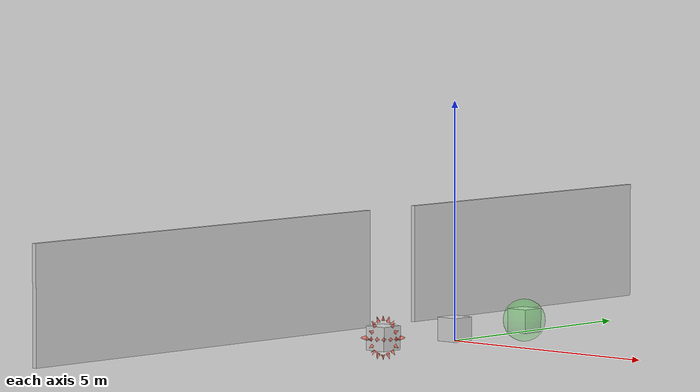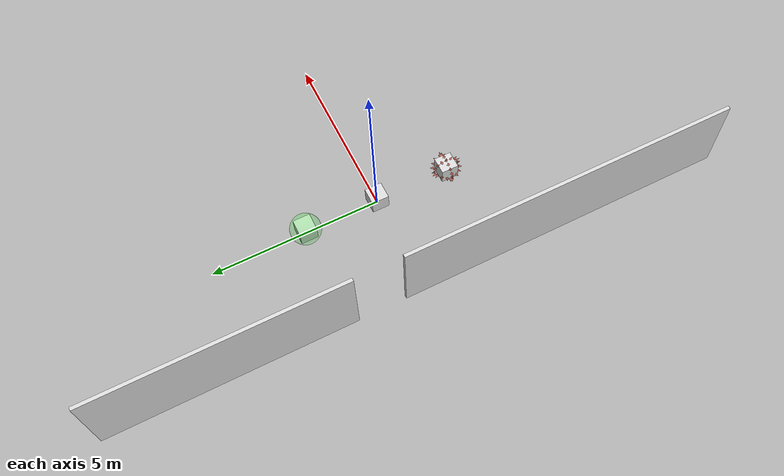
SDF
<?xml version="1.0" ?>
<sdf version="1.6">
  <model name="trap_d_2_1_m">
    <static>true</static>
    <include>
      <name>b_l</name>
      <uri>model://vis_cue_attract</uri>
      <pose>0 2.2 0.25 0 0 0</pose>
    </include>
    <include>
      <name>b_m</name>
      <uri>model://vis_cue_normal</uri>
      <pose>0 0 0.25 0 0 0</pose>
    </include>
    <include>
      <name>b_r</name>
      <uri>model://vis_cue_repel</uri>
      <pose>0 -2.2 0.25 0 0 0</pose>
    </include>

    <include>
      <name>gate_l</name>
      <uri>model://study_track_gate_l</uri>
      <pose>0 0 0 0 0 0</pose>
    </include>
  </model>
</sdf>

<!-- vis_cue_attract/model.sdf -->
<sdf version="1.6">
  <model name="vis_cue_attract">
    <static>false</static>
    <pose>0 0 0.25 0 0 0</pose>
    <link name='vis_cue_attract'>
      <inertial>
        <mass>1</mass>
        <inertia>
          <ixx>0.166667</ixx>
          <ixy>0</ixy>
          <ixz>0</ixz>
          <iyy>0.166667</iyy>
          <iyz>0</iyz>
          <izz>0.166667</izz>
        </inertia>
      </inertial>
      <collision name='collision'>
        <geometry>
          <box>
            <size>0.5 0.5 0.5</size>
          </box>
        </geometry>
        <max_contacts>10</max_contacts>
        <surface>
          <contact>
            <ode/>
          </contact>
          <bounce/>
          <friction>
            <torsional>
              <ode/>
            </torsional>
            <ode/>
          </friction>
        </surface>
      </collision>
      <visual name='box_visual'>
        <geometry>
          <box>
            <size>0.5 0.5 0.5</size>
          </box>
        </geometry>
        <material>
          <ambient>0.85 0.85 0.85 1</ambient>
          <diffuse>0.85 0.85 0.85 1</diffuse>
          <specular>0.15 0.15 0.15 1</specular>
          <emissive>0 0 0 0</emissive>
        </material>
      </visual>
      <visual name='cue_visual'>
        <geometry>
          <mesh>
            <uri>model://vis_cue_attract/meshes/sphere.stl</uri>
            <scale>0.9 0.9 0.9</scale>
          </mesh>
        </geometry>
        <material>
          <ambient>0 1 0 0.10</ambient>
          <diffuse>0 1 0 0.20</diffuse>
          <specular>0 1 0 0.20</specular>
          <emissive>0 1 0 0.1</emissive>
        </material>
      </visual>
      <self_collide>0</self_collide>
      <kinematic>0</kinematic>
    </link>
  </model>
</sdf>

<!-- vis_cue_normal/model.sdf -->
<sdf version="1.6">
  <model name="vis_cue_normal">
    <static>false</static>
    <pose>0 0 0.25 0 0 0</pose>
    <link name='vis_cue_normal'>
      <inertial>
        <mass>1</mass>
        <inertia>
          <ixx>0.166667</ixx>
          <ixy>0</ixy>
          <ixz>0</ixz>
          <iyy>0.166667</iyy>
          <iyz>0</iyz>
          <izz>0.166667</izz>
        </inertia>
      </inertial>
      <collision name='collision'>
        <geometry>
          <box>
            <size>0.5 0.5 0.5</size>
          </box>
        </geometry>
        <max_contacts>10</max_contacts>
        <surface>
          <contact>
            <ode/>
          </contact>
          <bounce/>
          <friction>
            <torsional>
              <ode/>
            </torsional>
            <ode/>
          </friction>
        </surface>
      </collision>
      <visual name='box_visual'>
        <geometry>
          <box>
            <size>0.5 0.5 0.5</size>
          </box>
        </geometry>
        <material>
          <ambient>0.85 0.85 0.85 1</ambient>
          <diffuse>0.85 0.85 0.85 1</diffuse>
          <specular>0.15 0.15 0.15 1</specular>
          <emissive>0 0 0 0</emissive>
        </material>
      </visual>
      <self_collide>0</self_collide>
      <kinematic>0</kinematic>
    </link>
  </model>
</sdf>

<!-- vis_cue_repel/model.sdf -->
<sdf version="1.6">
  <model name="vis_cue_repel">
    <static>false</static>
    <pose>0 0 0.25 0 0 0</pose>
    <link name='vis_cue_repel'>
      <inertial>
        <mass>1</mass>
        <inertia>
          <ixx>0.166667</ixx>
          <ixy>0</ixy>
          <ixz>0</ixz>
          <iyy>0.166667</iyy>
          <iyz>0</iyz>
          <izz>0.166667</izz>
        </inertia>
      </inertial>
      <collision name='collision'>
        <geometry>
          <box>
            <size>0.5 0.5 0.5</size>
          </box>
        </geometry>
        <max_contacts>10</max_contacts>
        <surface>
          <contact>
            <ode/>
          </contact>
          <bounce/>
          <friction>
            <torsional>
              <ode/>
            </torsional>
            <ode/>
          </friction>
        </surface>
      </collision>
      <visual name='box_visual'>
        <geometry>
          <box>
            <size>0.5 0.5 0.5</size>
          </box>
        </geometry>
        <material>
          <ambient>0.85 0.85 0.85 1</ambient>
          <diffuse>0.85 0.85 0.85 1</diffuse>
          <specular>0.15 0.15 0.15 1</specular>
          <emissive>0 0 0 0</emissive>
        </material>
      </visual>
      <visual name='cue_visual_1'>
        <pose>0 0 0 1.5708 0 1.5708</pose>
        <geometry>
          <mesh>
            <uri>model://vis_cue_repel/meshes/repelling_cue.stl</uri>
            <scale>0.36 0.36 0.36</scale>
          </mesh>
        </geometry>
        <material>
          <ambient>1 0.3 0.2 0.6</ambient>
          <diffuse>1 0.3 0.2 0.6</diffuse>
          <specular>1 0.3 0.2 0.7</specular>
          <emissive>0.5 0 0 0.1</emissive>
        </material>
      </visual>
      <visual name='cue_visual_2'>
        <pose>0 0 0 1.5708 0 0</pose>
        <geometry>
          <mesh>
            <uri>model://vis_cue_repel/meshes/repelling_cue.stl</uri>
            <scale>0.36 0.36 0.36</scale>
          </mesh>
        </geometry>
        <material>
          <ambient>1 0.3 0.2 0.6</ambient>
          <diffuse>1 0.3 0.2 0.6</diffuse>
          <specular>1 0.3 0.2 0.7</specular>
          <emissive>0.5 0 0 0.1</emissive>
        </material>
      </visual>
      <visual name='cue_visual_3'>
        <pose>0 0 0 0 0 0</pose>
        <geometry>
          <mesh>
            <uri>model://vis_cue_repel/meshes/repelling_cue.stl</uri>
            <scale>0.36 0.36 0.36</scale>
          </mesh>
        </geometry>
        <material>
          <ambient>1 0.3 0.2 0.6</ambient>
          <diffuse>1 0.3 0.2 0.6</diffuse>
          <specular>1 0.3 0.2 0.7</specular>
          <emissive>0.5 0 0 0.1</emissive>
        </material>
      </visual>
      <self_collide>0</self_collide>
      <kinematic>0</kinematic>
    </link>
  </model>
</sdf>

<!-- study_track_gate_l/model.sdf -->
<sdf version="1.6">
  <model name="study_track_gate_l">
    <static>true</static>

    <link name='wall_l'>
      <pose>-3 5.6 1.25 0 0 0</pose>
      <collision name='collision'>
        <geometry>
          <box>
            <size>0.1 7.2 2.5</size>
          </box>
        </geometry>
      </collision>
      <visual name='box_visual'>
        <geometry>
          <box>
            <size>0.1 7.2 2.5</size>
          </box>
        </geometry>
        <material>
          <ambient>0.85 0.85 0.85 1</ambient>
          <diffuse>0.85 0.85 0.85 1</diffuse>
          <specular>0.15 0.15 0.15 1</specular>
          <emissive>0 0 0 0</emissive>
        </material>
      </visual>
    </link>

    <link name='wall_r'>
      <pose>-3 -4.3 1.25 0 0 0</pose>
      <collision name='collision'>
        <geometry>
          <box>
            <size>0.1 9.8 2.5</size>
          </box>
        </geometry>
      </collision>
      <visual name='box_visual'>
        <geometry>
          <box>
            <size>0.1 9.8 2.5</size>
          </box>
        </geometry>
        <material>
          <ambient>0.85 0.85 0.85 1</ambient>
          <diffuse>0.85 0.85 0.85 1</diffuse>
          <specular>0.15 0.15 0.15 1</specular>
          <emissive>0 0 0 0</emissive>
        </material>
      </visual>
    </link>

  </model>
</sdf>
